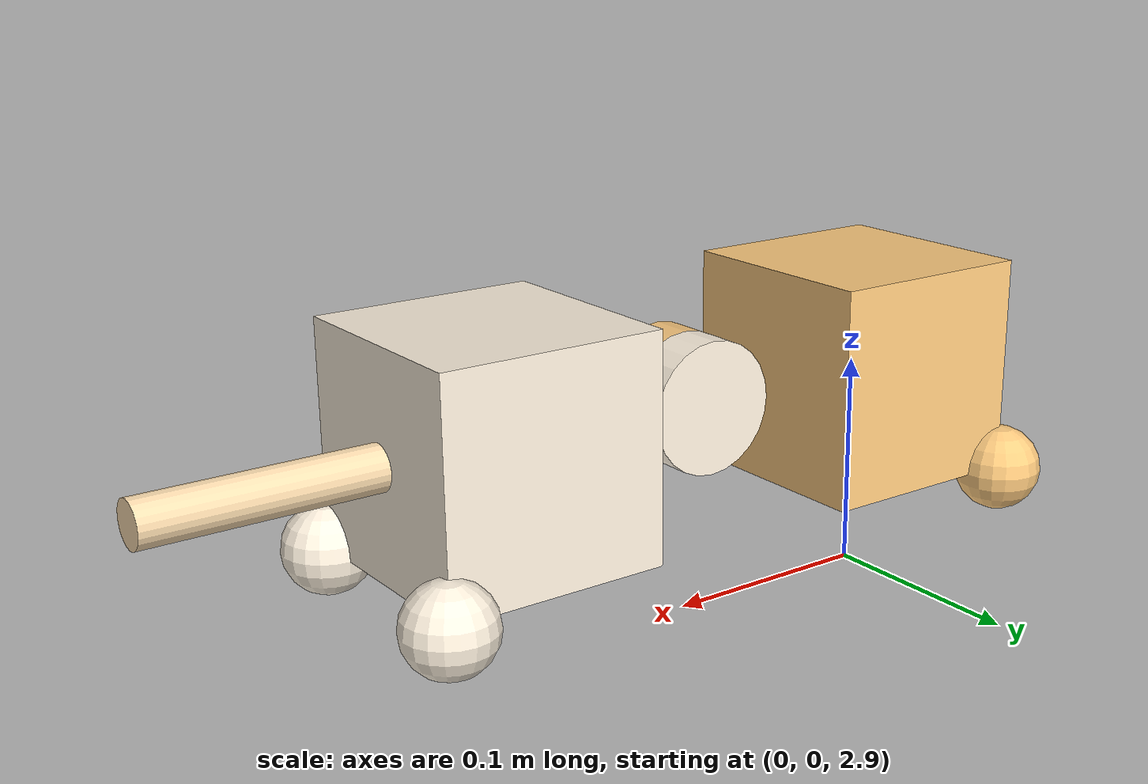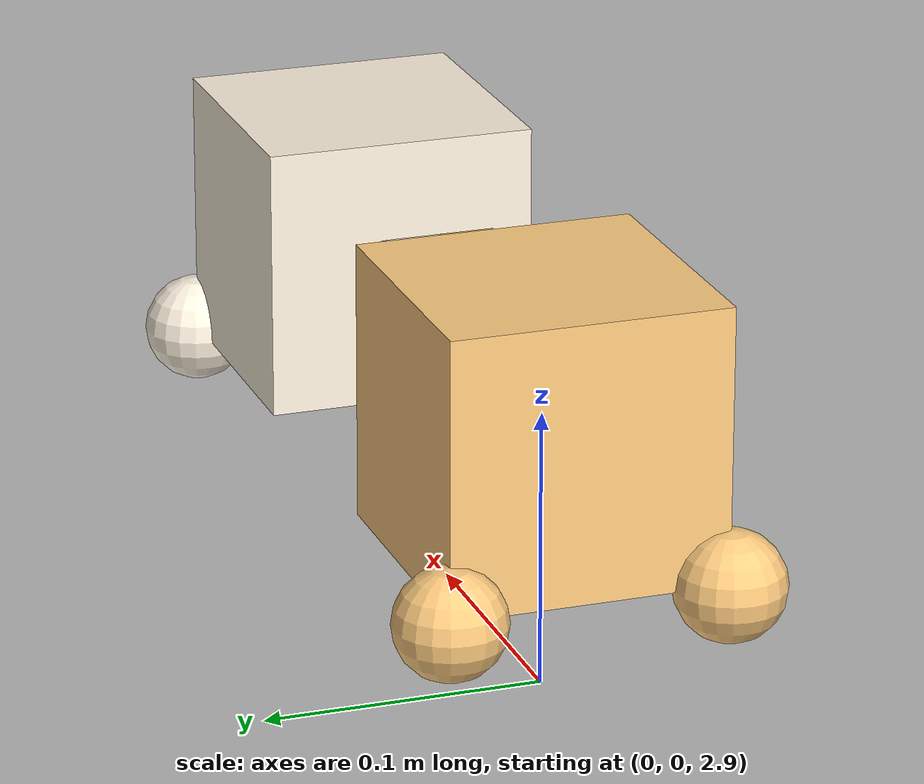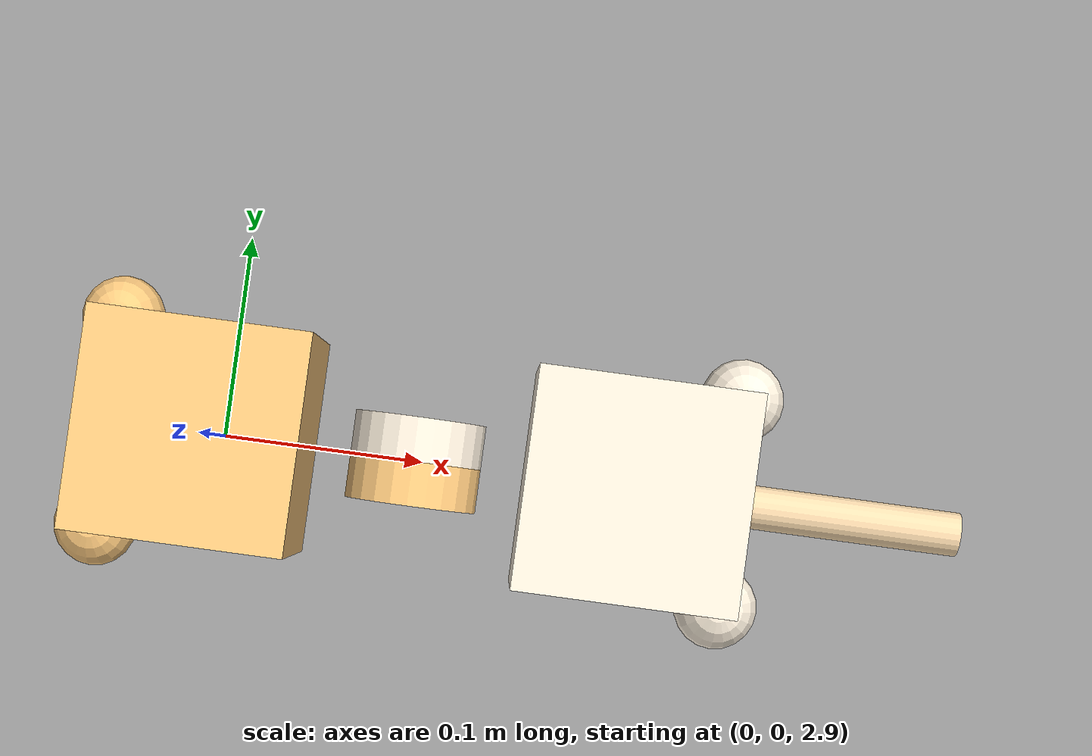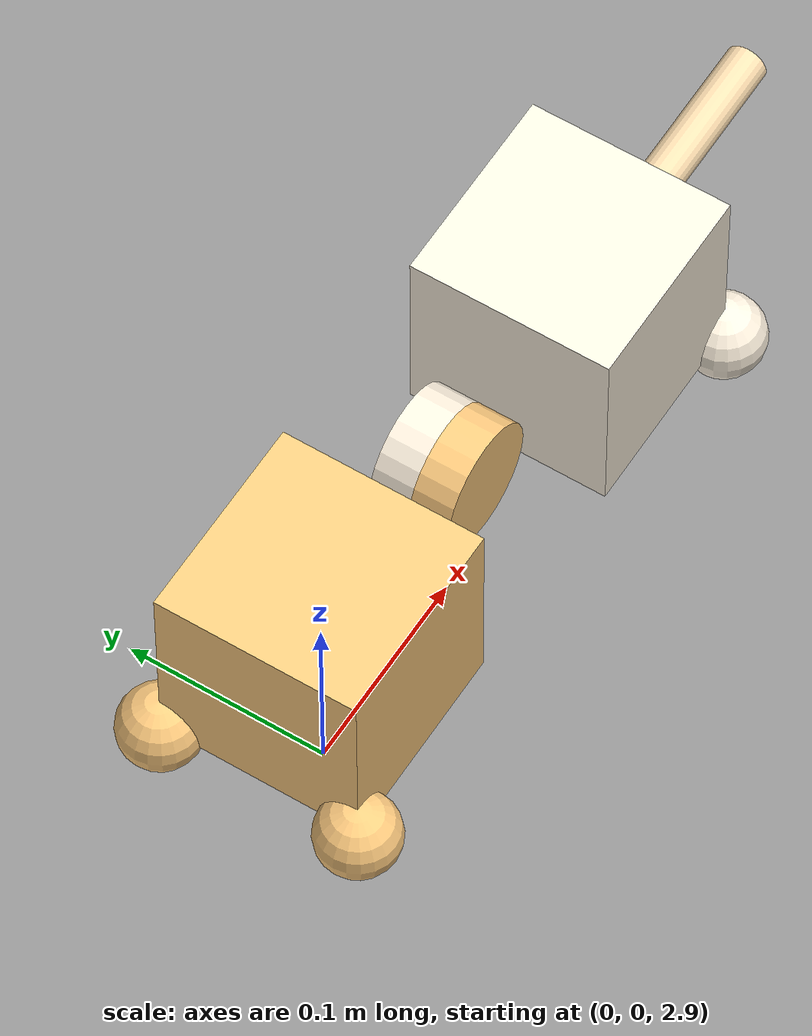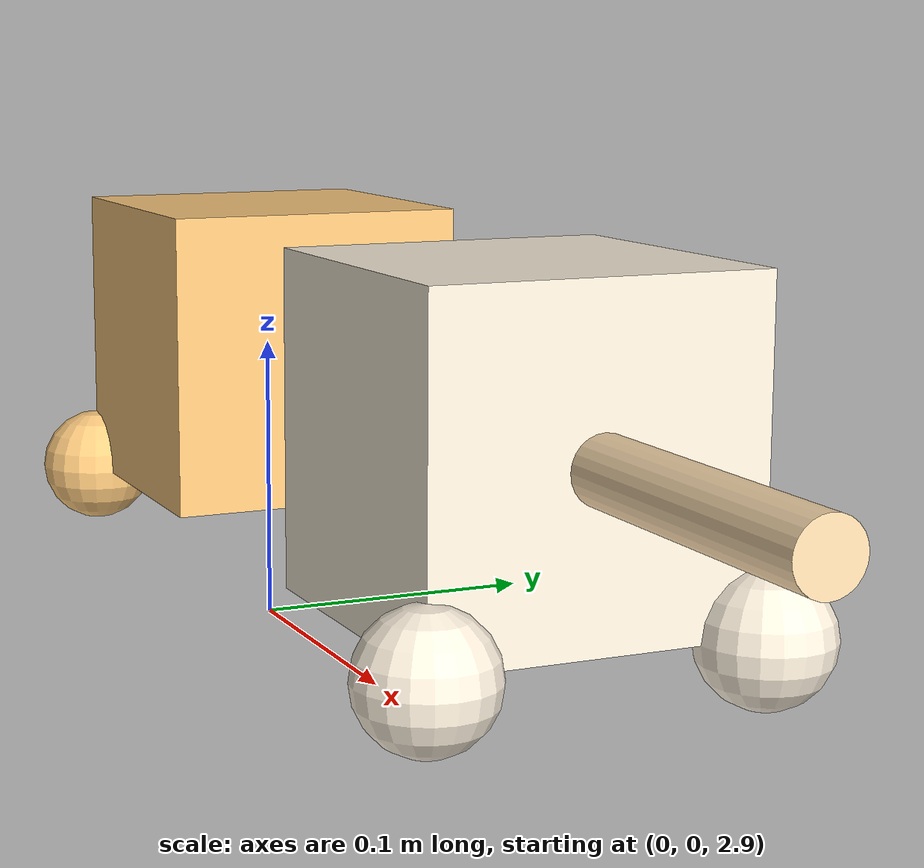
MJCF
<mujoco model="cat">
  <compiler angle="radian"/>
  <option timestep="0.001">
    <flag contact="disable"/>
  </option>

  <default>
    <joint limited="true" armature="0.001" damping="0.003" frictionloss="0.0077"/>
  </default>

  <asset>
    <material name="grey" rgba="0.5 0.5 0.5 1"/>
    <material name="color1" rgba="1 0.8 0.5 1"/>
    <material name="color2" rgba="1 0.878 0.698 1"/>
    <material name="color3" rgba="1 0.953 0.878 1"/>
  </asset>

  <worldbody>
    <light directional="true" diffuse=".8 .8 .8" pos="0 0 10" dir="0 0 -1"/>

    <geom name="floor" type="plane" size="0 0 0.05" material="grey"/>
    <body name="front_body" pos="0 0 3" euler="0 0 0">
      <freejoint name="root"/>
      <inertial pos="0 0 0" mass="0.772" diaginertia="0.0012867 0.0012867 0.0012867"/>
      <geom type="box" size="0.05 0.05 0.05" material="color1"/>
      <geom name="front_paw1" type="sphere" size="0.02" pos="-0.05 0.05 -0.05" mass="0" material="color1"/>
      <geom name="front_paw2" type="sphere" size="0.02" pos="-0.05 -0.05 -0.05" mass="0" material="color1"/>

      <body name="spine_1" pos="0.1 0 0">
        <joint name="rot1" type="hinge" axis="1 0 0" range="-7.28 7.28"/>
        <inertial pos="0 0 0" mass="0.068" diaginertia="0.0000176 0.0000306 0.0000176"/>
        <geom type="cylinder" size="0.03 0.01" pos="0 -0.01 0" euler="1.5708 0 0" material="color1"/>

        <body name="spine_2" pos="0.0 0 0">
          <joint name="pitch" type="hinge" axis="0 1 0" range="-1.57 1.57" />
          <inertial pos="0 0 0" mass="0.068" diaginertia="0.0000176 0.0000306 0.0000176"/>
          <geom type="cylinder" size="0.03 0.01" pos="0 0.01 0" euler="1.5708 0 0" material="color3"/>

          <body name="rear_body" pos="0.1 0 0">
            <joint name="rot2" type="hinge" axis="1 0 0" range="-7.28 7.28"/>
            <inertial pos="0 0 0" mass="0.448" diaginertia="0.0007467 0.0007467 0.0007467"/>
            <geom type="box" size="0.05 0.05 0.05" material="color3"/>
            <geom name="rear_paw1" type="sphere" size="0.02" pos="0.05 0.05 -0.05" mass="0" material="color3"/>
            <geom name="rear_paw2" type="sphere" size="0.02" pos="0.05 -0.05 -0.05" mass="0" material="color3"/>

            <body name="tail" pos="0.05 0 0">
              <joint name="tail" type="hinge" axis="0 1 0" range="-1.57 1.57"/>
              <inertial pos="0.05 0 0" mass="0.2" diaginertia="0.00001 0.00017167 0.00017167"/>
              <geom type="cylinder" size="0.01 0.05" pos="0.05 0 0" euler="0 1.5708 0" material="color2"/>
            </body>

          </body>
        </body>
      </body>
    </body>
  </worldbody>

  <actuator>
    <motor name="motor1" joint="rot1" ctrllimited="true" ctrlrange="-0.17 0.17"/>
    <motor name="motor2" joint="pitch" ctrllimited="true" ctrlrange="-0.17 0.17"/>
    <motor name="motor3" joint="rot2" ctrllimited="true" ctrlrange="-0.17 0.17"/>
    <motor name="motor4" joint="tail" ctrllimited="true" ctrlrange="-0.17 0.17"/>
  </actuator>

</mujoco>
